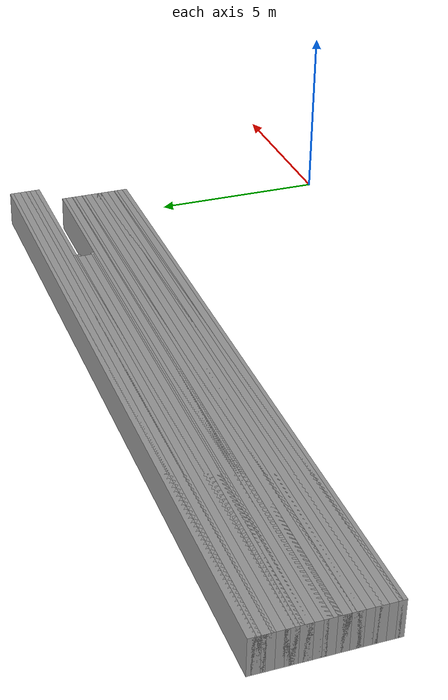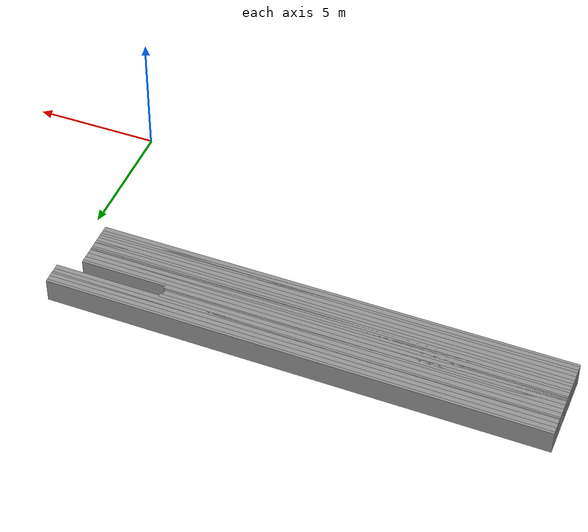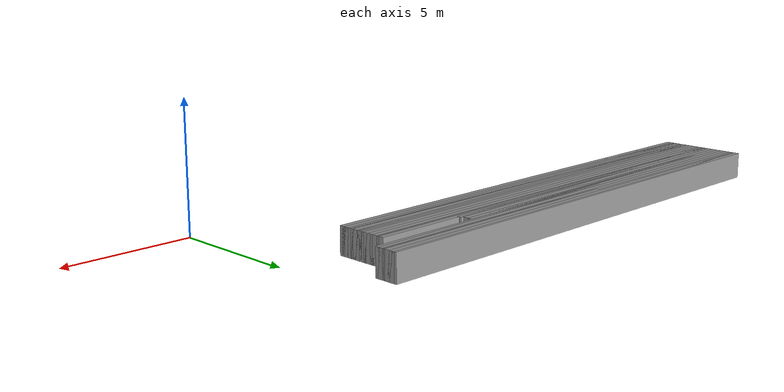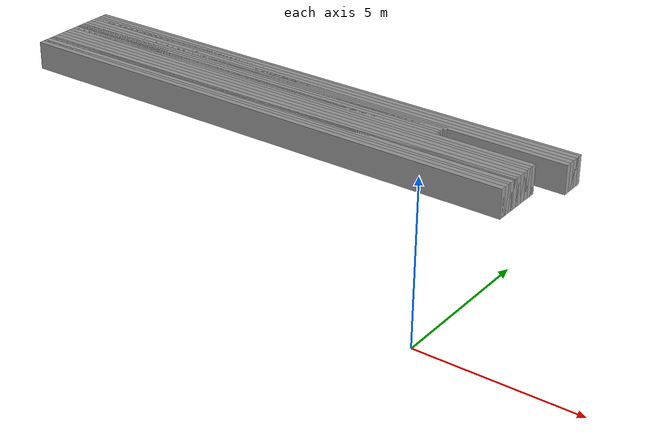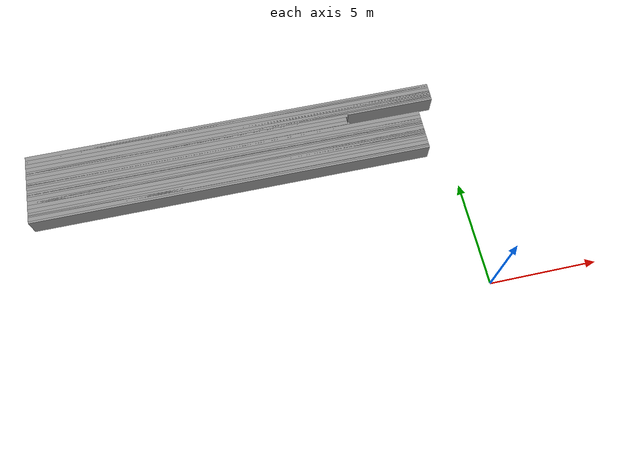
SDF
<sdf version="1.6">
 <world name="GridMap">
  <model name="GridMap">
   <link name="Wall_(105.5,67.0)">
    <collision name="Wall_(105.5,67.0)_Collision">
     <geometry><box><size>18.7 0.2 1.0</size></box></geometry>
     <pose>-10.55 6.7 0.5 0 -0 0</pose>
    </collision>
    <visual name="Wall_(105.5,67.0)_Visual">
     <geometry><box><size>18.7 0.2 1.0</size></box></geometry>
     <pose>-10.55 6.7 0.5 0 -0 0</pose>
     <material>
      <script><uri>file://media/materials/scripts/gazebo.material</uri><name>Gazebo/Grey</name></script>
      <ambient>1 1 1 1</ambient>
     </material>
     <meta><layer>0</layer></meta>
    </visual>
    <pose>0 0 0.5 0 -0 0</pose>
   </link>
   <link name="Wall_(105.5,68.0)">
    <collision name="Wall_(105.5,68.0)_Collision">
     <geometry><box><size>18.7 0.2 1.0</size></box></geometry>
     <pose>-10.55 6.800000000000001 0.5 0 -0 0</pose>
    </collision>
    <visual name="Wall_(105.5,68.0)_Visual">
     <geometry><box><size>18.7 0.2 1.0</size></box></geometry>
     <pose>-10.55 6.800000000000001 0.5 0 -0 0</pose>
     <material>
      <script><uri>file://media/materials/scripts/gazebo.material</uri><name>Gazebo/Grey</name></script>
      <ambient>1 1 1 1</ambient>
     </material>
     <meta><layer>0</layer></meta>
    </visual>
    <pose>0 0 0.5 0 -0 0</pose>
   </link>
   <link name="Wall_(105.5,69.0)">
    <collision name="Wall_(105.5,69.0)_Collision">
     <geometry><box><size>18.7 0.2 1.0</size></box></geometry>
     <pose>-10.55 6.9 0.5 0 -0 0</pose>
    </collision>
    <visual name="Wall_(105.5,69.0)_Visual">
     <geometry><box><size>18.7 0.2 1.0</size></box></geometry>
     <pose>-10.55 6.9 0.5 0 -0 0</pose>
     <material>
      <script><uri>file://media/materials/scripts/gazebo.material</uri><name>Gazebo/Grey</name></script>
      <ambient>1 1 1 1</ambient>
     </material>
     <meta><layer>0</layer></meta>
    </visual>
    <pose>0 0 0.5 0 -0 0</pose>
   </link>
   <link name="Wall_(105.5,70.0)">
    <collision name="Wall_(105.5,70.0)_Collision">
     <geometry><box><size>18.7 0.2 1.0</size></box></geometry>
     <pose>-10.55 7.0 0.5 0 -0 0</pose>
    </collision>
    <visual name="Wall_(105.5,70.0)_Visual">
     <geometry><box><size>18.7 0.2 1.0</size></box></geometry>
     <pose>-10.55 7.0 0.5 0 -0 0</pose>
     <material>
      <script><uri>file://media/materials/scripts/gazebo.material</uri><name>Gazebo/Grey</name></script>
      <ambient>1 1 1 1</ambient>
     </material>
     <meta><layer>0</layer></meta>
    </visual>
    <pose>0 0 0.5 0 -0 0</pose>
   </link>
   <link name="Wall_(105.5,71.0)">
    <collision name="Wall_(105.5,71.0)_Collision">
     <geometry><box><size>18.7 0.2 1.0</size></box></geometry>
     <pose>-10.55 7.1000000000000005 0.5 0 -0 0</pose>
    </collision>
    <visual name="Wall_(105.5,71.0)_Visual">
     <geometry><box><size>18.7 0.2 1.0</size></box></geometry>
     <pose>-10.55 7.1000000000000005 0.5 0 -0 0</pose>
     <material>
      <script><uri>file://media/materials/scripts/gazebo.material</uri><name>Gazebo/Grey</name></script>
      <ambient>1 1 1 1</ambient>
     </material>
     <meta><layer>0</layer></meta>
    </visual>
    <pose>0 0 0.5 0 -0 0</pose>
   </link>
   <link name="Wall_(105.5,72.0)">
    <collision name="Wall_(105.5,72.0)_Collision">
     <geometry><box><size>18.7 0.2 1.0</size></box></geometry>
     <pose>-10.55 7.2 0.5 0 -0 0</pose>
    </collision>
    <visual name="Wall_(105.5,72.0)_Visual">
     <geometry><box><size>18.7 0.2 1.0</size></box></geometry>
     <pose>-10.55 7.2 0.5 0 -0 0</pose>
     <material>
      <script><uri>file://media/materials/scripts/gazebo.material</uri><name>Gazebo/Grey</name></script>
      <ambient>1 1 1 1</ambient>
     </material>
     <meta><layer>0</layer></meta>
    </visual>
    <pose>0 0 0.5 0 -0 0</pose>
   </link>
   <link name="Wall_(105.5,73.0)">
    <collision name="Wall_(105.5,73.0)_Collision">
     <geometry><box><size>18.7 0.2 1.0</size></box></geometry>
     <pose>-10.55 7.300000000000001 0.5 0 -0 0</pose>
    </collision>
    <visual name="Wall_(105.5,73.0)_Visual">
     <geometry><box><size>18.7 0.2 1.0</size></box></geometry>
     <pose>-10.55 7.300000000000001 0.5 0 -0 0</pose>
     <material>
      <script><uri>file://media/materials/scripts/gazebo.material</uri><name>Gazebo/Grey</name></script>
      <ambient>1 1 1 1</ambient>
     </material>
     <meta><layer>0</layer></meta>
    </visual>
    <pose>0 0 0.5 0 -0 0</pose>
   </link>
   <link name="Wall_(105.5,74.0)">
    <collision name="Wall_(105.5,74.0)_Collision">
     <geometry><box><size>18.7 0.2 1.0</size></box></geometry>
     <pose>-10.55 7.4 0.5 0 -0 0</pose>
    </collision>
    <visual name="Wall_(105.5,74.0)_Visual">
     <geometry><box><size>18.7 0.2 1.0</size></box></geometry>
     <pose>-10.55 7.4 0.5 0 -0 0</pose>
     <material>
      <script><uri>file://media/materials/scripts/gazebo.material</uri><name>Gazebo/Grey</name></script>
      <ambient>1 1 1 1</ambient>
     </material>
     <meta><layer>0</layer></meta>
    </visual>
    <pose>0 0 0.5 0 -0 0</pose>
   </link>
   <link name="Wall_(105.5,75.0)">
    <collision name="Wall_(105.5,75.0)_Collision">
     <geometry><box><size>18.7 0.2 1.0</size></box></geometry>
     <pose>-10.55 7.5 0.5 0 -0 0</pose>
    </collision>
    <visual name="Wall_(105.5,75.0)_Visual">
     <geometry><box><size>18.7 0.2 1.0</size></box></geometry>
     <pose>-10.55 7.5 0.5 0 -0 0</pose>
     <material>
      <script><uri>file://media/materials/scripts/gazebo.material</uri><name>Gazebo/Grey</name></script>
      <ambient>1 1 1 1</ambient>
     </material>
     <meta><layer>0</layer></meta>
    </visual>
    <pose>0 0 0.5 0 -0 0</pose>
   </link>
   <link name="Wall_(105.5,76.0)">
    <collision name="Wall_(105.5,76.0)_Collision">
     <geometry><box><size>18.7 0.2 1.0</size></box></geometry>
     <pose>-10.55 7.6000000000000005 0.5 0 -0 0</pose>
    </collision>
    <visual name="Wall_(105.5,76.0)_Visual">
     <geometry><box><size>18.7 0.2 1.0</size></box></geometry>
     <pose>-10.55 7.6000000000000005 0.5 0 -0 0</pose>
     <material>
      <script><uri>file://media/materials/scripts/gazebo.material</uri><name>Gazebo/Grey</name></script>
      <ambient>1 1 1 1</ambient>
     </material>
     <meta><layer>0</layer></meta>
    </visual>
    <pose>0 0 0.5 0 -0 0</pose>
   </link>
   <link name="Wall_(105.5,77.0)">
    <collision name="Wall_(105.5,77.0)_Collision">
     <geometry><box><size>18.7 0.2 1.0</size></box></geometry>
     <pose>-10.55 7.7 0.5 0 -0 0</pose>
    </collision>
    <visual name="Wall_(105.5,77.0)_Visual">
     <geometry><box><size>18.7 0.2 1.0</size></box></geometry>
     <pose>-10.55 7.7 0.5 0 -0 0</pose>
     <material>
      <script><uri>file://media/materials/scripts/gazebo.material</uri><name>Gazebo/Grey</name></script>
      <ambient>1 1 1 1</ambient>
     </material>
     <meta><layer>0</layer></meta>
    </visual>
    <pose>0 0 0.5 0 -0 0</pose>
   </link>
   <link name="Wall_(105.5,78.0)">
    <collision name="Wall_(105.5,78.0)_Collision">
     <geometry><box><size>18.7 0.2 1.0</size></box></geometry>
     <pose>-10.55 7.800000000000001 0.5 0 -0 0</pose>
    </collision>
    <visual name="Wall_(105.5,78.0)_Visual">
     <geometry><box><size>18.7 0.2 1.0</size></box></geometry>
     <pose>-10.55 7.800000000000001 0.5 0 -0 0</pose>
     <material>
      <script><uri>file://media/materials/scripts/gazebo.material</uri><name>Gazebo/Grey</name></script>
      <ambient>1 1 1 1</ambient>
     </material>
     <meta><layer>0</layer></meta>
    </visual>
    <pose>0 0 0.5 0 -0 0</pose>
   </link>
   <link name="Wall_(105.5,79.0)">
    <collision name="Wall_(105.5,79.0)_Collision">
     <geometry><box><size>18.7 0.2 1.0</size></box></geometry>
     <pose>-10.55 7.9 0.5 0 -0 0</pose>
    </collision>
    <visual name="Wall_(105.5,79.0)_Visual">
     <geometry><box><size>18.7 0.2 1.0</size></box></geometry>
     <pose>-10.55 7.9 0.5 0 -0 0</pose>
     <material>
      <script><uri>file://media/materials/scripts/gazebo.material</uri><name>Gazebo/Grey</name></script>
      <ambient>1 1 1 1</ambient>
     </material>
     <meta><layer>0</layer></meta>
    </visual>
    <pose>0 0 0.5 0 -0 0</pose>
   </link>
   <link name="Wall_(105.5,80.0)">
    <collision name="Wall_(105.5,80.0)_Collision">
     <geometry><box><size>18.7 0.2 1.0</size></box></geometry>
     <pose>-10.55 8.0 0.5 0 -0 0</pose>
    </collision>
    <visual name="Wall_(105.5,80.0)_Visual">
     <geometry><box><size>18.7 0.2 1.0</size></box></geometry>
     <pose>-10.55 8.0 0.5 0 -0 0</pose>
     <material>
      <script><uri>file://media/materials/scripts/gazebo.material</uri><name>Gazebo/Grey</name></script>
      <ambient>1 1 1 1</ambient>
     </material>
     <meta><layer>0</layer></meta>
    </visual>
    <pose>0 0 0.5 0 -0 0</pose>
   </link>
   <link name="Wall_(105.5,81.0)">
    <collision name="Wall_(105.5,81.0)_Collision">
     <geometry><box><size>18.7 0.2 1.0</size></box></geometry>
     <pose>-10.55 8.1 0.5 0 -0 0</pose>
    </collision>
    <visual name="Wall_(105.5,81.0)_Visual">
     <geometry><box><size>18.7 0.2 1.0</size></box></geometry>
     <pose>-10.55 8.1 0.5 0 -0 0</pose>
     <material>
      <script><uri>file://media/materials/scripts/gazebo.material</uri><name>Gazebo/Grey</name></script>
      <ambient>1 1 1 1</ambient>
     </material>
     <meta><layer>0</layer></meta>
    </visual>
    <pose>0 0 0.5 0 -0 0</pose>
   </link>
   <link name="Wall_(105.5,82.0)">
    <collision name="Wall_(105.5,82.0)_Collision">
     <geometry><box><size>18.7 0.2 1.0</size></box></geometry>
     <pose>-10.55 8.200000000000001 0.5 0 -0 0</pose>
    </collision>
    <visual name="Wall_(105.5,82.0)_Visual">
     <geometry><box><size>18.7 0.2 1.0</size></box></geometry>
     <pose>-10.55 8.200000000000001 0.5 0 -0 0</pose>
     <material>
      <script><uri>file://media/materials/scripts/gazebo.material</uri><name>Gazebo/Grey</name></script>
      <ambient>1 1 1 1</ambient>
     </material>
     <meta><layer>0</layer></meta>
    </visual>
    <pose>0 0 0.5 0 -0 0</pose>
   </link>
   <link name="Wall_(105.5,83.0)">
    <collision name="Wall_(105.5,83.0)_Collision">
     <geometry><box><size>18.7 0.2 1.0</size></box></geometry>
     <pose>-10.55 8.3 0.5 0 -0 0</pose>
    </collision>
    <visual name="Wall_(105.5,83.0)_Visual">
     <geometry><box><size>18.7 0.2 1.0</size></box></geometry>
     <pose>-10.55 8.3 0.5 0 -0 0</pose>
     <material>
      <script><uri>file://media/materials/scripts/gazebo.material</uri><name>Gazebo/Grey</name></script>
      <ambient>1 1 1 1</ambient>
     </material>
     <meta><layer>0</layer></meta>
    </visual>
    <pose>0 0 0.5 0 -0 0</pose>
   </link>
   <link name="Wall_(105.5,84.0)">
    <collision name="Wall_(105.5,84.0)_Collision">
     <geometry><box><size>18.7 0.2 1.0</size></box></geometry>
     <pose>-10.55 8.4 0.5 0 -0 0</pose>
    </collision>
    <visual name="Wall_(105.5,84.0)_Visual">
     <geometry><box><size>18.7 0.2 1.0</size></box></geometry>
     <pose>-10.55 8.4 0.5 0 -0 0</pose>
     <material>
      <script><uri>file://media/materials/scripts/gazebo.material</uri><name>Gazebo/Grey</name></script>
      <ambient>1 1 1 1</ambient>
     </material>
     <meta><layer>0</layer></meta>
    </visual>
    <pose>0 0 0.5 0 -0 0</pose>
   </link>
   <link name="Wall_(105.5,85.0)">
    <collision name="Wall_(105.5,85.0)_Collision">
     <geometry><box><size>18.7 0.2 1.0</size></box></geometry>
     <pose>-10.55 8.5 0.5 0 -0 0</pose>
    </collision>
    <visual name="Wall_(105.5,85.0)_Visual">
     <geometry><box><size>18.7 0.2 1.0</size></box></geometry>
     <pose>-10.55 8.5 0.5 0 -0 0</pose>
     <material>
      <script><uri>file://media/materials/scripts/gazebo.material</uri><name>Gazebo/Grey</name></script>
      <ambient>1 1 1 1</ambient>
     </material>
     <meta><layer>0</layer></meta>
    </visual>
    <pose>0 0 0.5 0 -0 0</pose>
   </link>
   <link name="Wall_(122.5,86.0)">
    <collision name="Wall_(122.5,86.0)_Collision">
     <geometry><box><size>15.3 0.2 1.0</size></box></geometry>
     <pose>-12.25 8.6 0.5 0 -0 0</pose>
    </collision>
    <visual name="Wall_(122.5,86.0)_Visual">
     <geometry><box><size>15.3 0.2 1.0</size></box></geometry>
     <pose>-12.25 8.6 0.5 0 -0 0</pose>
     <material>
      <script><uri>file://media/materials/scripts/gazebo.material</uri><name>Gazebo/Grey</name></script>
      <ambient>1 1 1 1</ambient>
     </material>
     <meta><layer>0</layer></meta>
    </visual>
    <pose>0 0 0.5 0 -0 0</pose>
   </link>
   <link name="Wall_(123.0,87.0)">
    <collision name="Wall_(123.0,87.0)_Collision">
     <geometry><box><size>15.200000000000001 0.2 1.0</size></box></geometry>
     <pose>-12.3 8.700000000000001 0.5 0 -0 0</pose>
    </collision>
    <visual name="Wall_(123.0,87.0)_Visual">
     <geometry><box><size>15.200000000000001 0.2 1.0</size></box></geometry>
     <pose>-12.3 8.700000000000001 0.5 0 -0 0</pose>
     <material>
      <script><uri>file://media/materials/scripts/gazebo.material</uri><name>Gazebo/Grey</name></script>
      <ambient>1 1 1 1</ambient>
     </material>
     <meta><layer>0</layer></meta>
    </visual>
    <pose>0 0 0.5 0 -0 0</pose>
   </link>
   <link name="Wall_(123.0,88.0)">
    <collision name="Wall_(123.0,88.0)_Collision">
     <geometry><box><size>15.200000000000001 0.2 1.0</size></box></geometry>
     <pose>-12.3 8.8 0.5 0 -0 0</pose>
    </collision>
    <visual name="Wall_(123.0,88.0)_Visual">
     <geometry><box><size>15.200000000000001 0.2 1.0</size></box></geometry>
     <pose>-12.3 8.8 0.5 0 -0 0</pose>
     <material>
      <script><uri>file://media/materials/scripts/gazebo.material</uri><name>Gazebo/Grey</name></script>
      <ambient>1 1 1 1</ambient>
     </material>
     <meta><layer>0</layer></meta>
    </visual>
    <pose>0 0 0.5 0 -0 0</pose>
   </link>
   <link name="Wall_(123.0,89.0)">
    <collision name="Wall_(123.0,89.0)_Collision">
     <geometry><box><size>15.200000000000001 0.2 1.0</size></box></geometry>
     <pose>-12.3 8.9 0.5 0 -0 0</pose>
    </collision>
    <visual name="Wall_(123.0,89.0)_Visual">
     <geometry><box><size>15.200000000000001 0.2 1.0</size></box></geometry>
     <pose>-12.3 8.9 0.5 0 -0 0</pose>
     <material>
      <script><uri>file://media/materials/scripts/gazebo.material</uri><name>Gazebo/Grey</name></script>
      <ambient>1 1 1 1</ambient>
     </material>
     <meta><layer>0</layer></meta>
    </visual>
    <pose>0 0 0.5 0 -0 0</pose>
   </link>
   <link name="Wall_(123.0,90.0)">
    <collision name="Wall_(123.0,90.0)_Collision">
     <geometry><box><size>15.200000000000001 0.2 1.0</size></box></geometry>
     <pose>-12.3 9.0 0.5 0 -0 0</pose>
    </collision>
    <visual name="Wall_(123.0,90.0)_Visual">
     <geometry><box><size>15.200000000000001 0.2 1.0</size></box></geometry>
     <pose>-12.3 9.0 0.5 0 -0 0</pose>
     <material>
      <script><uri>file://media/materials/scripts/gazebo.material</uri><name>Gazebo/Grey</name></script>
      <ambient>1 1 1 1</ambient>
     </material>
     <meta><layer>0</layer></meta>
    </visual>
    <pose>0 0 0.5 0 -0 0</pose>
   </link>
   <link name="Wall_(122.5,91.0)">
    <collision name="Wall_(122.5,91.0)_Collision">
     <geometry><box><size>15.3 0.2 1.0</size></box></geometry>
     <pose>-12.25 9.1 0.5 0 -0 0</pose>
    </collision>
    <visual name="Wall_(122.5,91.0)_Visual">
     <geometry><box><size>15.3 0.2 1.0</size></box></geometry>
     <pose>-12.25 9.1 0.5 0 -0 0</pose>
     <material>
      <script><uri>file://media/materials/scripts/gazebo.material</uri><name>Gazebo/Grey</name></script>
      <ambient>1 1 1 1</ambient>
     </material>
     <meta><layer>0</layer></meta>
    </visual>
    <pose>0 0 0.5 0 -0 0</pose>
   </link>
   <link name="Wall_(101.5,92.0)">
    <collision name="Wall_(101.5,92.0)_Collision">
     <geometry><box><size>19.5 0.2 1.0</size></box></geometry>
     <pose>-10.15 9.200000000000001 0.5 0 -0 0</pose>
    </collision>
    <visual name="Wall_(101.5,92.0)_Visual">
     <geometry><box><size>19.5 0.2 1.0</size></box></geometry>
     <pose>-10.15 9.200000000000001 0.5 0 -0 0</pose>
     <material>
      <script><uri>file://media/materials/scripts/gazebo.material</uri><name>Gazebo/Grey</name></script>
      <ambient>1 1 1 1</ambient>
     </material>
     <meta><layer>0</layer></meta>
    </visual>
    <pose>0 0 0.5 0 -0 0</pose>
   </link>
   <link name="Wall_(101.5,93.0)">
    <collision name="Wall_(101.5,93.0)_Collision">
     <geometry><box><size>19.5 0.2 1.0</size></box></geometry>
     <pose>-10.15 9.3 0.5 0 -0 0</pose>
    </collision>
    <visual name="Wall_(101.5,93.0)_Visual">
     <geometry><box><size>19.5 0.2 1.0</size></box></geometry>
     <pose>-10.15 9.3 0.5 0 -0 0</pose>
     <material>
      <script><uri>file://media/materials/scripts/gazebo.material</uri><name>Gazebo/Grey</name></script>
      <ambient>1 1 1 1</ambient>
     </material>
     <meta><layer>0</layer></meta>
    </visual>
    <pose>0 0 0.5 0 -0 0</pose>
   </link>
   <link name="Wall_(101.5,94.0)">
    <collision name="Wall_(101.5,94.0)_Collision">
     <geometry><box><size>19.5 0.2 1.0</size></box></geometry>
     <pose>-10.15 9.4 0.5 0 -0 0</pose>
    </collision>
    <visual name="Wall_(101.5,94.0)_Visual">
     <geometry><box><size>19.5 0.2 1.0</size></box></geometry>
     <pose>-10.15 9.4 0.5 0 -0 0</pose>
     <material>
      <script><uri>file://media/materials/scripts/gazebo.material</uri><name>Gazebo/Grey</name></script>
      <ambient>1 1 1 1</ambient>
     </material>
     <meta><layer>0</layer></meta>
    </visual>
    <pose>0 0 0.5 0 -0 0</pose>
   </link>
   <link name="Wall_(101.5,95.0)">
    <collision name="Wall_(101.5,95.0)_Collision">
     <geometry><box><size>19.5 0.2 1.0</size></box></geometry>
     <pose>-10.15 9.5 0.5 0 -0 0</pose>
    </collision>
    <visual name="Wall_(101.5,95.0)_Visual">
     <geometry><box><size>19.5 0.2 1.0</size></box></geometry>
     <pose>-10.15 9.5 0.5 0 -0 0</pose>
     <material>
      <script><uri>file://media/materials/scripts/gazebo.material</uri><name>Gazebo/Grey</name></script>
      <ambient>1 1 1 1</ambient>
     </material>
     <meta><layer>0</layer></meta>
    </visual>
    <pose>0 0 0.5 0 -0 0</pose>
   </link>
   <link name="Wall_(101.5,96.0)">
    <collision name="Wall_(101.5,96.0)_Collision">
     <geometry><box><size>19.5 0.2 1.0</size></box></geometry>
     <pose>-10.15 9.600000000000001 0.5 0 -0 0</pose>
    </collision>
    <visual name="Wall_(101.5,96.0)_Visual">
     <geometry><box><size>19.5 0.2 1.0</size></box></geometry>
     <pose>-10.15 9.600000000000001 0.5 0 -0 0</pose>
     <material>
      <script><uri>file://media/materials/scripts/gazebo.material</uri><name>Gazebo/Grey</name></script>
      <ambient>1 1 1 1</ambient>
     </material>
     <meta><layer>0</layer></meta>
    </visual>
    <pose>0 0 0.5 0 -0 0</pose>
   </link>
   <link name="Wall_(101.5,97.0)">
    <collision name="Wall_(101.5,97.0)_Collision">
     <geometry><box><size>19.5 0.2 1.0</size></box></geometry>
     <pose>-10.15 9.700000000000001 0.5 0 -0 0</pose>
    </collision>
    <visual name="Wall_(101.5,97.0)_Visual">
     <geometry><box><size>19.5 0.2 1.0</size></box></geometry>
     <pose>-10.15 9.700000000000001 0.5 0 -0 0</pose>
     <material>
      <script><uri>file://media/materials/scripts/gazebo.material</uri><name>Gazebo/Grey</name></script>
      <ambient>1 1 1 1</ambient>
     </material>
     <meta><layer>0</layer></meta>
    </visual>
    <pose>0 0 0.5 0 -0 0</pose>
   </link>
   <link name="Wall_(101.5,98.0)">
    <collision name="Wall_(101.5,98.0)_Collision">
     <geometry><box><size>19.5 0.2 1.0</size></box></geometry>
     <pose>-10.15 9.8 0.5 0 -0 0</pose>
    </collision>
    <visual name="Wall_(101.5,98.0)_Visual">
     <geometry><box><size>19.5 0.2 1.0</size></box></geometry>
     <pose>-10.15 9.8 0.5 0 -0 0</pose>
     <material>
      <script><uri>file://media/materials/scripts/gazebo.material</uri><name>Gazebo/Grey</name></script>
      <ambient>1 1 1 1</ambient>
     </material>
     <meta><layer>0</layer></meta>
    </visual>
    <pose>0 0 0.5 0 -0 0</pose>
   </link>
   <link name="Wall_(101.5,99.0)">
    <collision name="Wall_(101.5,99.0)_Collision">
     <geometry><box><size>19.5 0.2 1.0</size></box></geometry>
     <pose>-10.15 9.9 0.5 0 -0 0</pose>
    </collision>
    <visual name="Wall_(101.5,99.0)_Visual">
     <geometry><box><size>19.5 0.2 1.0</size></box></geometry>
     <pose>-10.15 9.9 0.5 0 -0 0</pose>
     <material>
      <script><uri>file://media/materials/scripts/gazebo.material</uri><name>Gazebo/Grey</name></script>
      <ambient>1 1 1 1</ambient>
     </material>
     <meta><layer>0</layer></meta>
    </visual>
    <pose>0 0 0.5 0 -0 0</pose>
   </link>
   <static>1</static>
  </model>
 </world>
</sdf>
